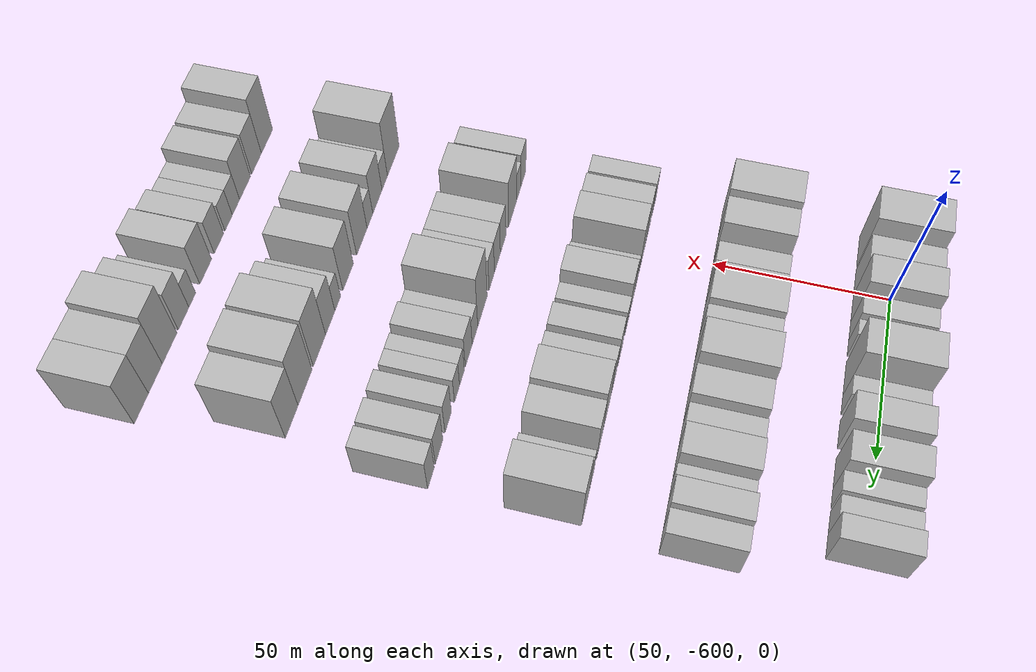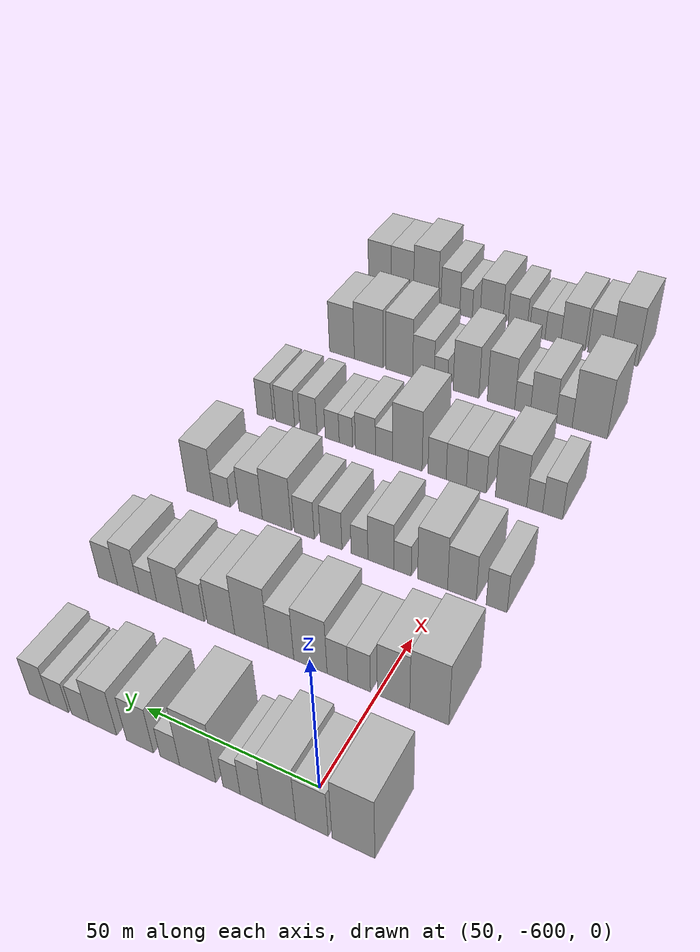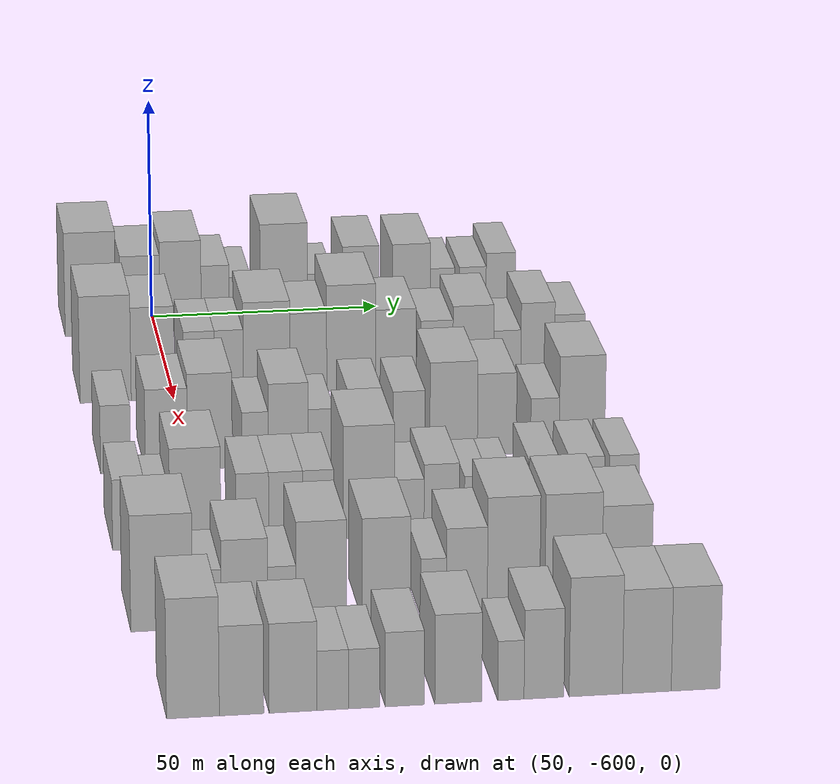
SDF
<sdf version="1.6">
 <world name="default">
  <model name="building_1">
   <static>1</static>
   <pose>50.0000 -614.4221 0 0.000000 0.000000 0.000000</pose>
   <link name="link">
    <pose>0 0 12.00 0 0 0</pose>
    <collision name="collision"><geometry><box><size>20.0000 11.1559 24.0000</size></box></geometry></collision>
    <visual name="visual">
     <cast_shadows>0</cast_shadows>
     <geometry><box><size>20.0000 11.1559 24.0000</size></box></geometry>
     <material>
      <script>
       <uri>model://HANNAS_wall/materials/scripts</uri>
       <uri>model://HANNAS_wall/materials/textures</uri>
       <name>vrc/HANNAS_wall</name>
      </script>
     </material>
    </visual>
   </link>
  </model>
  <model name="building_2">
   <static>1</static>
   <pose>50.0000 -603.4879 0 0.000000 0.000000 0.000000</pose>
   <link name="link">
    <pose>0 0 9.00 0 0 0</pose>
    <collision name="collision"><geometry><box><size>20.0000 8.7124 18.0000</size></box></geometry></collision>
    <visual name="visual">
     <cast_shadows>0</cast_shadows>
     <geometry><box><size>20.0000 8.7124 18.0000</size></box></geometry>
     <material>
      <script>
       <uri>model://HANNAS_wall/materials/scripts</uri>
       <uri>model://HANNAS_wall/materials/textures</uri>
       <name>vrc/HANNAS_wall</name>
      </script>
     </material>
    </visual>
   </link>
  </model>
  <model name="building_3">
   <static>1</static>
   <pose>50.0000 -594.5957 0 0.000000 0.000000 0.000000</pose>
   <link name="link">
    <pose>0 0 10.50 0 0 0</pose>
    <collision name="collision"><geometry><box><size>20.0000 9.0720 21.0000</size></box></geometry></collision>
    <visual name="visual">
     <cast_shadows>0</cast_shadows>
     <geometry><box><size>20.0000 9.0720 21.0000</size></box></geometry>
     <material>
      <script>
       <uri>model://HANNAS_wall/materials/scripts</uri>
       <uri>model://HANNAS_wall/materials/textures</uri>
       <name>vrc/HANNAS_wall</name>
      </script>
     </material>
    </visual>
   </link>
  </model>
  <model name="building_4">
   <static>1</static>
   <pose>50.0000 -586.9636 0 0.000000 0.000000 0.000000</pose>
   <link name="link">
    <pose>0 0 7.50 0 0 0</pose>
    <collision name="collision"><geometry><box><size>20.0000 6.1923 15.0000</size></box></geometry></collision>
    <visual name="visual">
     <cast_shadows>0</cast_shadows>
     <geometry><box><size>20.0000 6.1923 15.0000</size></box></geometry>
     <material>
      <script>
       <uri>model://HANNAS_wall/materials/scripts</uri>
       <uri>model://HANNAS_wall/materials/textures</uri>
       <name>vrc/HANNAS_wall</name>
      </script>
     </material>
    </visual>
   </link>
  </model>
  <model name="building_5">
   <static>1</static>
   <pose>50.0000 -581.4569 0 0.000000 0.000000 0.000000</pose>
   <link name="link">
    <pose>0 0 6.00 0 0 0</pose>
    <collision name="collision"><geometry><box><size>20.0000 4.8212 12.0000</size></box></geometry></collision>
    <visual name="visual">
     <cast_shadows>0</cast_shadows>
     <geometry><box><size>20.0000 4.8212 12.0000</size></box></geometry>
     <material>
      <script>
       <uri>model://HANNAS_wall/materials/scripts</uri>
       <uri>model://HANNAS_wall/materials/textures</uri>
       <name>vrc/HANNAS_wall</name>
      </script>
     </material>
    </visual>
   </link>
  </model>
  <model name="building_6">
   <static>1</static>
   <pose>50.0000 -571.8169 0 0.000000 0.000000 0.000000</pose>
   <link name="link">
    <pose>0 0 12.00 0 0 0</pose>
    <collision name="collision"><geometry><box><size>20.0000 10.4588 24.0000</size></box></geometry></collision>
    <visual name="visual">
     <cast_shadows>0</cast_shadows>
     <geometry><box><size>20.0000 10.4588 24.0000</size></box></geometry>
     <material>
      <script>
       <uri>model://HANNAS_wall/materials/scripts</uri>
       <uri>model://HANNAS_wall/materials/textures</uri>
       <name>vrc/HANNAS_wall</name>
      </script>
     </material>
    </visual>
   </link>
  </model>
  <model name="building_7">
   <static>1</static>
   <pose>50.0000 -563.7268 0 0.000000 0.000000 0.000000</pose>
   <link name="link">
    <pose>0 0 6.00 0 0 0</pose>
    <collision name="collision"><geometry><box><size>20.0000 5.7213 12.0000</size></box></geometry></collision>
    <visual name="visual">
     <cast_shadows>0</cast_shadows>
     <geometry><box><size>20.0000 5.7213 12.0000</size></box></geometry>
     <material>
      <script>
       <uri>model://HANNAS_wall/materials/scripts</uri>
       <uri>model://HANNAS_wall/materials/textures</uri>
       <name>vrc/HANNAS_wall</name>
      </script>
     </material>
    </visual>
   </link>
  </model>
  <model name="building_8">
   <static>1</static>
   <pose>50.0000 -554.8263 0 0.000000 0.000000 0.000000</pose>
   <link name="link">
    <pose>0 0 9.00 0 0 0</pose>
    <collision name="collision"><geometry><box><size>20.0000 8.0798 18.0000</size></box></geometry></collision>
    <visual name="visual">
     <cast_shadows>0</cast_shadows>
     <geometry><box><size>20.0000 8.0798 18.0000</size></box></geometry>
     <material>
      <script>
       <uri>model://HANNAS_wall/materials/scripts</uri>
       <uri>model://HANNAS_wall/materials/textures</uri>
       <name>vrc/HANNAS_wall</name>
      </script>
     </material>
    </visual>
   </link>
  </model>
  <model name="building_9">
   <static>1</static>
   <pose>50.0000 -543.5676 0 0.000000 0.000000 0.000000</pose>
   <link name="link">
    <pose>0 0 9.00 0 0 0</pose>
    <collision name="collision"><geometry><box><size>20.0000 8.4376 18.0000</size></box></geometry></collision>
    <visual name="visual">
     <cast_shadows>0</cast_shadows>
     <geometry><box><size>20.0000 8.4376 18.0000</size></box></geometry>
     <material>
      <script>
       <uri>model://HANNAS_wall/materials/scripts</uri>
       <uri>model://HANNAS_wall/materials/textures</uri>
       <name>vrc/HANNAS_wall</name>
      </script>
     </material>
    </visual>
   </link>
  </model>
  <model name="building_10">
   <static>1</static>
   <pose>50.0000 -536.6171 0 0.000000 0.000000 0.000000</pose>
   <link name="link">
    <pose>0 0 6.00 0 0 0</pose>
    <collision name="collision"><geometry><box><size>20.0000 5.4634 12.0000</size></box></geometry></collision>
    <visual name="visual">
     <cast_shadows>0</cast_shadows>
     <geometry><box><size>20.0000 5.4634 12.0000</size></box></geometry>
     <material>
      <script>
       <uri>model://HANNAS_wall/materials/scripts</uri>
       <uri>model://HANNAS_wall/materials/textures</uri>
       <name>vrc/HANNAS_wall</name>
      </script>
     </material>
    </visual>
   </link>
  </model>
  <model name="building_11">
   <static>1</static>
   <pose>50.0000 -529.8984 0 0.000000 0.000000 0.000000</pose>
   <link name="link">
    <pose>0 0 6.00 0 0 0</pose>
    <collision name="collision"><geometry><box><size>20.0000 5.9742 12.0000</size></box></geometry></collision>
    <visual name="visual">
     <cast_shadows>0</cast_shadows>
     <geometry><box><size>20.0000 5.9742 12.0000</size></box></geometry>
     <material>
      <script>
       <uri>model://HANNAS_wall/materials/scripts</uri>
       <uri>model://HANNAS_wall/materials/textures</uri>
       <name>vrc/HANNAS_wall</name>
      </script>
     </material>
    </visual>
   </link>
  </model>
  <model name="building_12">
   <static>1</static>
   <pose>50.0000 -523.6184 0 0.000000 0.000000 0.000000</pose>
   <link name="link">
    <pose>0 0 7.50 0 0 0</pose>
    <collision name="collision"><geometry><box><size>20.0000 6.5856 15.0000</size></box></geometry></collision>
    <visual name="visual">
     <cast_shadows>0</cast_shadows>
     <geometry><box><size>20.0000 6.5856 15.0000</size></box></geometry>
     <material>
      <script>
       <uri>model://HANNAS_wall/materials/scripts</uri>
       <uri>model://HANNAS_wall/materials/textures</uri>
       <name>vrc/HANNAS_wall</name>
      </script>
     </material>
    </visual>
   </link>
  </model>
  <model name="building_136">
   <static>1</static>
   <pose>90.0000 -614.5608 0 0.000000 0.000000 0.000000</pose>
   <link name="link">
    <pose>0 0 12.00 0 0 0</pose>
    <collision name="collision"><geometry><box><size>20.0000 10.8784 24.0000</size></box></geometry></collision>
    <visual name="visual">
     <cast_shadows>0</cast_shadows>
     <geometry><box><size>20.0000 10.8784 24.0000</size></box></geometry>
     <material>
      <script>
       <uri>model://HANNAS_wall/materials/scripts</uri>
       <uri>model://HANNAS_wall/materials/textures</uri>
       <name>vrc/HANNAS_wall</name>
      </script>
     </material>
    </visual>
   </link>
  </model>
  <model name="building_137">
   <static>1</static>
   <pose>90.0000 -604.5056 0 0.000000 0.000000 0.000000</pose>
   <link name="link">
    <pose>0 0 10.50 0 0 0</pose>
    <collision name="collision"><geometry><box><size>20.0000 9.2322 21.0000</size></box></geometry></collision>
    <visual name="visual">
     <cast_shadows>0</cast_shadows>
     <geometry><box><size>20.0000 9.2322 21.0000</size></box></geometry>
     <material>
      <script>
       <uri>model://HANNAS_wall/materials/scripts</uri>
       <uri>model://HANNAS_wall/materials/textures</uri>
       <name>vrc/HANNAS_wall</name>
      </script>
     </material>
    </visual>
   </link>
  </model>
  <model name="building_138">
   <static>1</static>
   <pose>90.0000 -594.6134 0 0.000000 0.000000 0.000000</pose>
   <link name="link">
    <pose>0 0 7.50 0 0 0</pose>
    <collision name="collision"><geometry><box><size>20.0000 6.5521 15.0000</size></box></geometry></collision>
    <visual name="visual">
     <cast_shadows>0</cast_shadows>
     <geometry><box><size>20.0000 6.5521 15.0000</size></box></geometry>
     <material>
      <script>
       <uri>model://HANNAS_wall/materials/scripts</uri>
       <uri>model://HANNAS_wall/materials/textures</uri>
       <name>vrc/HANNAS_wall</name>
      </script>
     </material>
    </visual>
   </link>
  </model>
  <model name="building_139">
   <static>1</static>
   <pose>90.0000 -588.2598 0 0.000000 0.000000 0.000000</pose>
   <link name="link">
    <pose>0 0 7.50 0 0 0</pose>
    <collision name="collision"><geometry><box><size>20.0000 6.1551 15.0000</size></box></geometry></collision>
    <visual name="visual">
     <cast_shadows>0</cast_shadows>
     <geometry><box><size>20.0000 6.1551 15.0000</size></box></geometry>
     <material>
      <script>
       <uri>model://HANNAS_wall/materials/scripts</uri>
       <uri>model://HANNAS_wall/materials/textures</uri>
       <name>vrc/HANNAS_wall</name>
      </script>
     </material>
    </visual>
   </link>
  </model>
  <model name="building_140">
   <static>1</static>
   <pose>90.0000 -580.1632 0 0.000000 0.000000 0.000000</pose>
   <link name="link">
    <pose>0 0 10.50 0 0 0</pose>
    <collision name="collision"><geometry><box><size>20.0000 10.0381 21.0000</size></box></geometry></collision>
    <visual name="visual">
     <cast_shadows>0</cast_shadows>
     <geometry><box><size>20.0000 10.0381 21.0000</size></box></geometry>
     <material>
      <script>
       <uri>model://HANNAS_wall/materials/scripts</uri>
       <uri>model://HANNAS_wall/materials/textures</uri>
       <name>vrc/HANNAS_wall</name>
      </script>
     </material>
    </visual>
   </link>
  </model>
  <model name="building_141">
   <static>1</static>
   <pose>90.0000 -571.2366 0 0.000000 0.000000 0.000000</pose>
   <link name="link">
    <pose>0 0 9.00 0 0 0</pose>
    <collision name="collision"><geometry><box><size>20.0000 7.8151 18.0000</size></box></geometry></collision>
    <visual name="visual">
     <cast_shadows>0</cast_shadows>
     <geometry><box><size>20.0000 7.8151 18.0000</size></box></geometry>
     <material>
      <script>
       <uri>model://HANNAS_wall/materials/scripts</uri>
       <uri>model://HANNAS_wall/materials/textures</uri>
       <name>vrc/HANNAS_wall</name>
      </script>
     </material>
    </visual>
   </link>
  </model>
  <model name="building_142">
   <static>1</static>
   <pose>90.0000 -562.1021 0 0.000000 0.000000 0.000000</pose>
   <link name="link">
    <pose>0 0 12.00 0 0 0</pose>
    <collision name="collision"><geometry><box><size>20.0000 10.4539 24.0000</size></box></geometry></collision>
    <visual name="visual">
     <cast_shadows>0</cast_shadows>
     <geometry><box><size>20.0000 10.4539 24.0000</size></box></geometry>
     <material>
      <script>
       <uri>model://HANNAS_wall/materials/scripts</uri>
       <uri>model://HANNAS_wall/materials/textures</uri>
       <name>vrc/HANNAS_wall</name>
      </script>
     </material>
    </visual>
   </link>
  </model>
  <model name="building_143">
   <static>1</static>
   <pose>90.0000 -552.4951 0 0.000000 0.000000 0.000000</pose>
   <link name="link">
    <pose>0 0 9.00 0 0 0</pose>
    <collision name="collision"><geometry><box><size>20.0000 8.7600 18.0000</size></box></geometry></collision>
    <visual name="visual">
     <cast_shadows>0</cast_shadows>
     <geometry><box><size>20.0000 8.7600 18.0000</size></box></geometry>
     <material>
      <script>
       <uri>model://HANNAS_wall/materials/scripts</uri>
       <uri>model://HANNAS_wall/materials/textures</uri>
       <name>vrc/HANNAS_wall</name>
      </script>
     </material>
    </visual>
   </link>
  </model>
  <model name="building_144">
   <static>1</static>
   <pose>90.0000 -543.6557 0 0.000000 0.000000 0.000000</pose>
   <link name="link">
    <pose>0 0 7.50 0 0 0</pose>
    <collision name="collision"><geometry><box><size>20.0000 6.9188 15.0000</size></box></geometry></collision>
    <visual name="visual">
     <cast_shadows>0</cast_shadows>
     <geometry><box><size>20.0000 6.9188 15.0000</size></box></geometry>
     <material>
      <script>
       <uri>model://HANNAS_wall/materials/scripts</uri>
       <uri>model://HANNAS_wall/materials/textures</uri>
       <name>vrc/HANNAS_wall</name>
      </script>
     </material>
    </visual>
   </link>
  </model>
  <model name="building_145">
   <static>1</static>
   <pose>90.0000 -535.8048 0 0.000000 0.000000 0.000000</pose>
   <link name="link">
    <pose>0 0 9.00 0 0 0</pose>
    <collision name="collision"><geometry><box><size>20.0000 8.7831 18.0000</size></box></geometry></collision>
    <visual name="visual">
     <cast_shadows>0</cast_shadows>
     <geometry><box><size>20.0000 8.7831 18.0000</size></box></geometry>
     <material>
      <script>
       <uri>model://HANNAS_wall/materials/scripts</uri>
       <uri>model://HANNAS_wall/materials/textures</uri>
       <name>vrc/HANNAS_wall</name>
      </script>
     </material>
    </visual>
   </link>
  </model>
  <model name="building_146">
   <static>1</static>
   <pose>90.0000 -528.4596 0 0.000000 0.000000 0.000000</pose>
   <link name="link">
    <pose>0 0 6.00 0 0 0</pose>
    <collision name="collision"><geometry><box><size>20.0000 5.9072 12.0000</size></box></geometry></collision>
    <visual name="visual">
     <cast_shadows>0</cast_shadows>
     <geometry><box><size>20.0000 5.9072 12.0000</size></box></geometry>
     <material>
      <script>
       <uri>model://HANNAS_wall/materials/scripts</uri>
       <uri>model://HANNAS_wall/materials/textures</uri>
       <name>vrc/HANNAS_wall</name>
      </script>
     </material>
    </visual>
   </link>
  </model>
  <model name="building_147">
   <static>1</static>
   <pose>90.0000 -521.8596 0 0.000000 0.000000 0.000000</pose>
   <link name="link">
    <pose>0 0 9.00 0 0 0</pose>
    <collision name="collision"><geometry><box><size>20.0000 7.2928 18.0000</size></box></geometry></collision>
    <visual name="visual">
     <cast_shadows>0</cast_shadows>
     <geometry><box><size>20.0000 7.2928 18.0000</size></box></geometry>
     <material>
      <script>
       <uri>model://HANNAS_wall/materials/scripts</uri>
       <uri>model://HANNAS_wall/materials/textures</uri>
       <name>vrc/HANNAS_wall</name>
      </script>
     </material>
    </visual>
   </link>
  </model>
  <model name="building_148">
   <static>1</static>
   <pose>90.0000 -514.9527 0 0.000000 0.000000 0.000000</pose>
   <link name="link">
    <pose>0 0 7.50 0 0 0</pose>
    <collision name="collision"><geometry><box><size>20.0000 6.5209 15.0000</size></box></geometry></collision>
    <visual name="visual">
     <cast_shadows>0</cast_shadows>
     <geometry><box><size>20.0000 6.5209 15.0000</size></box></geometry>
     <material>
      <script>
       <uri>model://HANNAS_wall/materials/scripts</uri>
       <uri>model://HANNAS_wall/materials/textures</uri>
       <name>vrc/HANNAS_wall</name>
      </script>
     </material>
    </visual>
   </link>
  </model>
  <model name="building_277">
   <static>1</static>
   <pose>130.0000 -615.8976 0 0.000000 0.000000 0.000000</pose>
   <link name="link">
    <pose>0 0 7.50 0 0 0</pose>
    <collision name="collision"><geometry><box><size>20.0000 6.2048 15.0000</size></box></geometry></collision>
    <visual name="visual">
     <cast_shadows>0</cast_shadows>
     <geometry><box><size>20.0000 6.2048 15.0000</size></box></geometry>
     <material>
      <script>
       <uri>model://HANNAS_wall/materials/scripts</uri>
       <uri>model://HANNAS_wall/materials/textures</uri>
       <name>vrc/HANNAS_wall</name>
      </script>
     </material>
    </visual>
   </link>
  </model>
  <model name="building_278">
   <static>1</static>
   <pose>130.0000 -605.4466 0 0.000000 0.000000 0.000000</pose>
   <link name="link">
    <pose>0 0 9.00 0 0 0</pose>
    <collision name="collision"><geometry><box><size>20.0000 8.6971 18.0000</size></box></geometry></collision>
    <visual name="visual">
     <cast_shadows>0</cast_shadows>
     <geometry><box><size>20.0000 8.6971 18.0000</size></box></geometry>
     <material>
      <script>
       <uri>model://HANNAS_wall/materials/scripts</uri>
       <uri>model://HANNAS_wall/materials/textures</uri>
       <name>vrc/HANNAS_wall</name>
      </script>
     </material>
    </visual>
   </link>
  </model>
  <model name="building_279">
   <static>1</static>
   <pose>130.0000 -596.4821 0 0.000000 0.000000 0.000000</pose>
   <link name="link">
    <pose>0 0 10.50 0 0 0</pose>
    <collision name="collision"><geometry><box><size>20.0000 9.2318 21.0000</size></box></geometry></collision>
    <visual name="visual">
     <cast_shadows>0</cast_shadows>
     <geometry><box><size>20.0000 9.2318 21.0000</size></box></geometry>
     <material>
      <script>
       <uri>model://HANNAS_wall/materials/scripts</uri>
       <uri>model://HANNAS_wall/materials/textures</uri>
       <name>vrc/HANNAS_wall</name>
      </script>
     </material>
    </visual>
   </link>
  </model>
  <model name="building_280">
   <static>1</static>
   <pose>130.0000 -587.1384 0 0.000000 0.000000 0.000000</pose>
   <link name="link">
    <pose>0 0 6.00 0 0 0</pose>
    <collision name="collision"><geometry><box><size>20.0000 5.4557 12.0000</size></box></geometry></collision>
    <visual name="visual">
     <cast_shadows>0</cast_shadows>
     <geometry><box><size>20.0000 5.4557 12.0000</size></box></geometry>
     <material>
      <script>
       <uri>model://HANNAS_wall/materials/scripts</uri>
       <uri>model://HANNAS_wall/materials/textures</uri>
       <name>vrc/HANNAS_wall</name>
      </script>
     </material>
    </visual>
   </link>
  </model>
  <model name="building_281">
   <static>1</static>
   <pose>130.0000 -580.2748 0 0.000000 0.000000 0.000000</pose>
   <link name="link">
    <pose>0 0 9.00 0 0 0</pose>
    <collision name="collision"><geometry><box><size>20.0000 8.2716 18.0000</size></box></geometry></collision>
    <visual name="visual">
     <cast_shadows>0</cast_shadows>
     <geometry><box><size>20.0000 8.2716 18.0000</size></box></geometry>
     <material>
      <script>
       <uri>model://HANNAS_wall/materials/scripts</uri>
       <uri>model://HANNAS_wall/materials/textures</uri>
       <name>vrc/HANNAS_wall</name>
      </script>
     </material>
    </visual>
   </link>
  </model>
  <model name="building_282">
   <static>1</static>
   <pose>130.0000 -573.4249 0 0.000000 0.000000 0.000000</pose>
   <link name="link">
    <pose>0 0 6.00 0 0 0</pose>
    <collision name="collision"><geometry><box><size>20.0000 5.4283 12.0000</size></box></geometry></collision>
    <visual name="visual">
     <cast_shadows>0</cast_shadows>
     <geometry><box><size>20.0000 5.4283 12.0000</size></box></geometry>
     <material>
      <script>
       <uri>model://HANNAS_wall/materials/scripts</uri>
       <uri>model://HANNAS_wall/materials/textures</uri>
       <name>vrc/HANNAS_wall</name>
      </script>
     </material>
    </visual>
   </link>
  </model>
  <model name="building_283">
   <static>1</static>
   <pose>130.0000 -564.1349 0 0.000000 0.000000 0.000000</pose>
   <link name="link">
    <pose>0 0 7.50 0 0 0</pose>
    <collision name="collision"><geometry><box><size>20.0000 7.1517 15.0000</size></box></geometry></collision>
    <visual name="visual">
     <cast_shadows>0</cast_shadows>
     <geometry><box><size>20.0000 7.1517 15.0000</size></box></geometry>
     <material>
      <script>
       <uri>model://HANNAS_wall/materials/scripts</uri>
       <uri>model://HANNAS_wall/materials/textures</uri>
       <name>vrc/HANNAS_wall</name>
      </script>
     </material>
    </visual>
   </link>
  </model>
  <model name="building_284">
   <static>1</static>
   <pose>130.0000 -555.2096 0 0.000000 0.000000 0.000000</pose>
   <link name="link">
    <pose>0 0 7.50 0 0 0</pose>
    <collision name="collision"><geometry><box><size>20.0000 6.6989 15.0000</size></box></geometry></collision>
    <visual name="visual">
     <cast_shadows>0</cast_shadows>
     <geometry><box><size>20.0000 6.6989 15.0000</size></box></geometry>
     <material>
      <script>
       <uri>model://HANNAS_wall/materials/scripts</uri>
       <uri>model://HANNAS_wall/materials/textures</uri>
       <name>vrc/HANNAS_wall</name>
      </script>
     </material>
    </visual>
   </link>
  </model>
  <model name="building_285">
   <static>1</static>
   <pose>130.0000 -545.9020 0 0.000000 0.000000 0.000000</pose>
   <link name="link">
    <pose>0 0 10.50 0 0 0</pose>
    <collision name="collision"><geometry><box><size>20.0000 9.9163 21.0000</size></box></geometry></collision>
    <visual name="visual">
     <cast_shadows>0</cast_shadows>
     <geometry><box><size>20.0000 9.9163 21.0000</size></box></geometry>
     <material>
      <script>
       <uri>model://HANNAS_wall/materials/scripts</uri>
       <uri>model://HANNAS_wall/materials/textures</uri>
       <name>vrc/HANNAS_wall</name>
      </script>
     </material>
    </visual>
   </link>
  </model>
  <model name="building_286">
   <static>1</static>
   <pose>130.0000 -536.8794 0 0.000000 0.000000 0.000000</pose>
   <link name="link">
    <pose>0 0 9.00 0 0 0</pose>
    <collision name="collision"><geometry><box><size>20.0000 8.1289 18.0000</size></box></geometry></collision>
    <visual name="visual">
     <cast_shadows>0</cast_shadows>
     <geometry><box><size>20.0000 8.1289 18.0000</size></box></geometry>
     <material>
      <script>
       <uri>model://HANNAS_wall/materials/scripts</uri>
       <uri>model://HANNAS_wall/materials/textures</uri>
       <name>vrc/HANNAS_wall</name>
      </script>
     </material>
    </visual>
   </link>
  </model>
  <model name="building_287">
   <static>1</static>
   <pose>130.0000 -526.8162 0 0.000000 0.000000 0.000000</pose>
   <link name="link">
    <pose>0 0 6.00 0 0 0</pose>
    <collision name="collision"><geometry><box><size>20.0000 5.9977 12.0000</size></box></geometry></collision>
    <visual name="visual">
     <cast_shadows>0</cast_shadows>
     <geometry><box><size>20.0000 5.9977 12.0000</size></box></geometry>
     <material>
      <script>
       <uri>model://HANNAS_wall/materials/scripts</uri>
       <uri>model://HANNAS_wall/materials/textures</uri>
       <name>vrc/HANNAS_wall</name>
      </script>
     </material>
    </visual>
   </link>
  </model>
  <model name="building_288">
   <static>1</static>
   <pose>130.0000 -519.0332 0 0.000000 0.000000 0.000000</pose>
   <link name="link">
    <pose>0 0 10.50 0 0 0</pose>
    <collision name="collision"><geometry><box><size>20.0000 9.5683 21.0000</size></box></geometry></collision>
    <visual name="visual">
     <cast_shadows>0</cast_shadows>
     <geometry><box><size>20.0000 9.5683 21.0000</size></box></geometry>
     <material>
      <script>
       <uri>model://HANNAS_wall/materials/scripts</uri>
       <uri>model://HANNAS_wall/materials/textures</uri>
       <name>vrc/HANNAS_wall</name>
      </script>
     </material>
    </visual>
   </link>
  </model>
  <model name="building_416">
   <static>1</static>
   <pose>170.0000 -616.8271 0 0.000000 0.000000 0.000000</pose>
   <link name="link">
    <pose>0 0 7.50 0 0 0</pose>
    <collision name="collision"><geometry><box><size>20.0000 6.3458 15.0000</size></box></geometry></collision>
    <visual name="visual">
     <cast_shadows>0</cast_shadows>
     <geometry><box><size>20.0000 6.3458 15.0000</size></box></geometry>
     <material>
      <script>
       <uri>model://HANNAS_wall/materials/scripts</uri>
       <uri>model://HANNAS_wall/materials/textures</uri>
       <name>vrc/HANNAS_wall</name>
      </script>
     </material>
    </visual>
   </link>
  </model>
  <model name="building_417">
   <static>1</static>
   <pose>170.0000 -611.1258 0 0.000000 0.000000 0.000000</pose>
   <link name="link">
    <pose>0 0 6.00 0 0 0</pose>
    <collision name="collision"><geometry><box><size>20.0000 5.0568 12.0000</size></box></geometry></collision>
    <visual name="visual">
     <cast_shadows>0</cast_shadows>
     <geometry><box><size>20.0000 5.0568 12.0000</size></box></geometry>
     <material>
      <script>
       <uri>model://HANNAS_wall/materials/scripts</uri>
       <uri>model://HANNAS_wall/materials/textures</uri>
       <name>vrc/HANNAS_wall</name>
      </script>
     </material>
    </visual>
   </link>
  </model>
  <model name="building_418">
   <static>1</static>
   <pose>170.0000 -603.5191 0 0.000000 0.000000 0.000000</pose>
   <link name="link">
    <pose>0 0 10.50 0 0 0</pose>
    <collision name="collision"><geometry><box><size>20.0000 10.1565 21.0000</size></box></geometry></collision>
    <visual name="visual">
     <cast_shadows>0</cast_shadows>
     <geometry><box><size>20.0000 10.1565 21.0000</size></box></geometry>
     <material>
      <script>
       <uri>model://HANNAS_wall/materials/scripts</uri>
       <uri>model://HANNAS_wall/materials/textures</uri>
       <name>vrc/HANNAS_wall</name>
      </script>
     </material>
    </visual>
   </link>
  </model>
  <model name="building_419">
   <static>1</static>
   <pose>170.0000 -592.1621 0 0.000000 0.000000 0.000000</pose>
   <link name="link">
    <pose>0 0 7.50 0 0 0</pose>
    <collision name="collision"><geometry><box><size>20.0000 6.5575 15.0000</size></box></geometry></collision>
    <visual name="visual">
     <cast_shadows>0</cast_shadows>
     <geometry><box><size>20.0000 6.5575 15.0000</size></box></geometry>
     <material>
      <script>
       <uri>model://HANNAS_wall/materials/scripts</uri>
       <uri>model://HANNAS_wall/materials/textures</uri>
       <name>vrc/HANNAS_wall</name>
      </script>
     </material>
    </visual>
   </link>
  </model>
  <model name="building_420">
   <static>1</static>
   <pose>170.0000 -585.4894 0 0.000000 0.000000 0.000000</pose>
   <link name="link">
    <pose>0 0 7.50 0 0 0</pose>
    <collision name="collision"><geometry><box><size>20.0000 6.7880 15.0000</size></box></geometry></collision>
    <visual name="visual">
     <cast_shadows>0</cast_shadows>
     <geometry><box><size>20.0000 6.7880 15.0000</size></box></geometry>
     <material>
      <script>
       <uri>model://HANNAS_wall/materials/scripts</uri>
       <uri>model://HANNAS_wall/materials/textures</uri>
       <name>vrc/HANNAS_wall</name>
      </script>
     </material>
    </visual>
   </link>
  </model>
  <model name="building_421">
   <static>1</static>
   <pose>170.0000 -579.0139 0 0.000000 0.000000 0.000000</pose>
   <link name="link">
    <pose>0 0 7.50 0 0 0</pose>
    <collision name="collision"><geometry><box><size>20.0000 6.1629 15.0000</size></box></geometry></collision>
    <visual name="visual">
     <cast_shadows>0</cast_shadows>
     <geometry><box><size>20.0000 6.1629 15.0000</size></box></geometry>
     <material>
      <script>
       <uri>model://HANNAS_wall/materials/scripts</uri>
       <uri>model://HANNAS_wall/materials/textures</uri>
       <name>vrc/HANNAS_wall</name>
      </script>
     </material>
    </visual>
   </link>
  </model>
  <model name="building_422">
   <static>1</static>
   <pose>170.0000 -568.8088 0 0.000000 0.000000 0.000000</pose>
   <link name="link">
    <pose>0 0 12.00 0 0 0</pose>
    <collision name="collision"><geometry><box><size>20.0000 10.2472 24.0000</size></box></geometry></collision>
    <visual name="visual">
     <cast_shadows>0</cast_shadows>
     <geometry><box><size>20.0000 10.2472 24.0000</size></box></geometry>
     <material>
      <script>
       <uri>model://HANNAS_wall/materials/scripts</uri>
       <uri>model://HANNAS_wall/materials/textures</uri>
       <name>vrc/HANNAS_wall</name>
      </script>
     </material>
    </visual>
   </link>
  </model>
  <model name="building_423">
   <static>1</static>
   <pose>170.0000 -560.7270 0 0.000000 0.000000 0.000000</pose>
   <link name="link">
    <pose>0 0 6.00 0 0 0</pose>
    <collision name="collision"><geometry><box><size>20.0000 5.9164 12.0000</size></box></geometry></collision>
    <visual name="visual">
     <cast_shadows>0</cast_shadows>
     <geometry><box><size>20.0000 5.9164 12.0000</size></box></geometry>
     <material>
      <script>
       <uri>model://HANNAS_wall/materials/scripts</uri>
       <uri>model://HANNAS_wall/materials/textures</uri>
       <name>vrc/HANNAS_wall</name>
      </script>
     </material>
    </visual>
   </link>
  </model>
  <model name="building_424">
   <static>1</static>
   <pose>170.0000 -554.2044 0 0.000000 0.000000 0.000000</pose>
   <link name="link">
    <pose>0 0 7.50 0 0 0</pose>
    <collision name="collision"><geometry><box><size>20.0000 7.1289 15.0000</size></box></geometry></collision>
    <visual name="visual">
     <cast_shadows>0</cast_shadows>
     <geometry><box><size>20.0000 7.1289 15.0000</size></box></geometry>
     <material>
      <script>
       <uri>model://HANNAS_wall/materials/scripts</uri>
       <uri>model://HANNAS_wall/materials/textures</uri>
       <name>vrc/HANNAS_wall</name>
      </script>
     </material>
    </visual>
   </link>
  </model>
  <model name="building_425">
   <static>1</static>
   <pose>170.0000 -547.2338 0 0.000000 0.000000 0.000000</pose>
   <link name="link">
    <pose>0 0 6.00 0 0 0</pose>
    <collision name="collision"><geometry><box><size>20.0000 4.8123 12.0000</size></box></geometry></collision>
    <visual name="visual">
     <cast_shadows>0</cast_shadows>
     <geometry><box><size>20.0000 4.8123 12.0000</size></box></geometry>
     <material>
      <script>
       <uri>model://HANNAS_wall/materials/scripts</uri>
       <uri>model://HANNAS_wall/materials/textures</uri>
       <name>vrc/HANNAS_wall</name>
      </script>
     </material>
    </visual>
   </link>
  </model>
  <model name="building_426">
   <static>1</static>
   <pose>170.0000 -542.2905 0 0.000000 0.000000 0.000000</pose>
   <link name="link">
    <pose>0 0 6.00 0 0 0</pose>
    <collision name="collision"><geometry><box><size>20.0000 5.0743 12.0000</size></box></geometry></collision>
    <visual name="visual">
     <cast_shadows>0</cast_shadows>
     <geometry><box><size>20.0000 5.0743 12.0000</size></box></geometry>
     <material>
      <script>
       <uri>model://HANNAS_wall/materials/scripts</uri>
       <uri>model://HANNAS_wall/materials/textures</uri>
       <name>vrc/HANNAS_wall</name>
      </script>
     </material>
    </visual>
   </link>
  </model>
  <model name="building_427">
   <static>1</static>
   <pose>170.0000 -533.6336 0 0.000000 0.000000 0.000000</pose>
   <link name="link">
    <pose>0 0 7.50 0 0 0</pose>
    <collision name="collision"><geometry><box><size>20.0000 6.2394 15.0000</size></box></geometry></collision>
    <visual name="visual">
     <cast_shadows>0</cast_shadows>
     <geometry><box><size>20.0000 6.2394 15.0000</size></box></geometry>
     <material>
      <script>
       <uri>model://HANNAS_wall/materials/scripts</uri>
       <uri>model://HANNAS_wall/materials/textures</uri>
       <name>vrc/HANNAS_wall</name>
      </script>
     </material>
    </visual>
   </link>
  </model>
  <model name="building_428">
   <static>1</static>
   <pose>170.0000 -524.9667 0 0.000000 0.000000 0.000000</pose>
   <link name="link">
    <pose>0 0 7.50 0 0 0</pose>
    <collision name="collision"><geometry><box><size>20.0000 7.0943 15.0000</size></box></geometry></collision>
    <visual name="visual">
     <cast_shadows>0</cast_shadows>
     <geometry><box><size>20.0000 7.0943 15.0000</size></box></geometry>
     <material>
      <script>
       <uri>model://HANNAS_wall/materials/scripts</uri>
       <uri>model://HANNAS_wall/materials/textures</uri>
       <name>vrc/HANNAS_wall</name>
      </script>
     </material>
    </visual>
   </link>
  </model>
  <model name="building_429">
   <static>1</static>
   <pose>170.0000 -517.4108 0 0.000000 0.000000 0.000000</pose>
   <link name="link">
    <pose>0 0 7.50 0 0 0</pose>
    <collision name="collision"><geometry><box><size>20.0000 6.0175 15.0000</size></box></geometry></collision>
    <visual name="visual">
     <cast_shadows>0</cast_shadows>
     <geometry><box><size>20.0000 6.0175 15.0000</size></box></geometry>
     <material>
      <script>
       <uri>model://HANNAS_wall/materials/scripts</uri>
       <uri>model://HANNAS_wall/materials/textures</uri>
       <name>vrc/HANNAS_wall</name>
      </script>
     </material>
    </visual>
   </link>
  </model>
  <model name="building_551">
   <static>1</static>
   <pose>210.0000 -614.0545 0 0.000000 0.000000 0.000000</pose>
   <link name="link">
    <pose>0 0 12.00 0 0 0</pose>
    <collision name="collision"><geometry><box><size>20.0000 11.8909 24.0000</size></box></geometry></collision>
    <visual name="visual">
     <cast_shadows>0</cast_shadows>
     <geometry><box><size>20.0000 11.8909 24.0000</size></box></geometry>
     <material>
      <script>
       <uri>model://HANNAS_wall/materials/scripts</uri>
       <uri>model://HANNAS_wall/materials/textures</uri>
       <name>vrc/HANNAS_wall</name>
      </script>
     </material>
    </visual>
   </link>
  </model>
  <model name="building_552">
   <static>1</static>
   <pose>210.0000 -605.3529 0 0.000000 0.000000 0.000000</pose>
   <link name="link">
    <pose>0 0 6.00 0 0 0</pose>
    <collision name="collision"><geometry><box><size>20.0000 5.5123 12.0000</size></box></geometry></collision>
    <visual name="visual">
     <cast_shadows>0</cast_shadows>
     <geometry><box><size>20.0000 5.5123 12.0000</size></box></geometry>
     <material>
      <script>
       <uri>model://HANNAS_wall/materials/scripts</uri>
       <uri>model://HANNAS_wall/materials/textures</uri>
       <name>vrc/HANNAS_wall</name>
      </script>
     </material>
    </visual>
   </link>
  </model>
  <model name="building_553">
   <static>1</static>
   <pose>210.0000 -598.1265 0 0.000000 0.000000 0.000000</pose>
   <link name="link">
    <pose>0 0 9.00 0 0 0</pose>
    <collision name="collision"><geometry><box><size>20.0000 8.9406 18.0000</size></box></geometry></collision>
    <visual name="visual">
     <cast_shadows>0</cast_shadows>
     <geometry><box><size>20.0000 8.9406 18.0000</size></box></geometry>
     <material>
      <script>
       <uri>model://HANNAS_wall/materials/scripts</uri>
       <uri>model://HANNAS_wall/materials/textures</uri>
       <name>vrc/HANNAS_wall</name>
      </script>
     </material>
    </visual>
   </link>
  </model>
  <model name="building_554">
   <static>1</static>
   <pose>210.0000 -590.9261 0 0.000000 0.000000 0.000000</pose>
   <link name="link">
    <pose>0 0 6.00 0 0 0</pose>
    <collision name="collision"><geometry><box><size>20.0000 5.4602 12.0000</size></box></geometry></collision>
    <visual name="visual">
     <cast_shadows>0</cast_shadows>
     <geometry><box><size>20.0000 5.4602 12.0000</size></box></geometry>
     <material>
      <script>
       <uri>model://HANNAS_wall/materials/scripts</uri>
       <uri>model://HANNAS_wall/materials/textures</uri>
       <name>vrc/HANNAS_wall</name>
      </script>
     </material>
    </visual>
   </link>
  </model>
  <model name="building_555">
   <static>1</static>
   <pose>210.0000 -583.3238 0 0.000000 0.000000 0.000000</pose>
   <link name="link">
    <pose>0 0 10.50 0 0 0</pose>
    <collision name="collision"><geometry><box><size>20.0000 9.7444 21.0000</size></box></geometry></collision>
    <visual name="visual">
     <cast_shadows>0</cast_shadows>
     <geometry><box><size>20.0000 9.7444 21.0000</size></box></geometry>
     <material>
      <script>
       <uri>model://HANNAS_wall/materials/scripts</uri>
       <uri>model://HANNAS_wall/materials/textures</uri>
       <name>vrc/HANNAS_wall</name>
      </script>
     </material>
    </visual>
   </link>
  </model>
  <model name="building_556">
   <static>1</static>
   <pose>210.0000 -570.7556 0 0.000000 0.000000 0.000000</pose>
   <link name="link">
    <pose>0 0 10.50 0 0 0</pose>
    <collision name="collision"><geometry><box><size>20.0000 9.3921 21.0000</size></box></geometry></collision>
    <visual name="visual">
     <cast_shadows>0</cast_shadows>
     <geometry><box><size>20.0000 9.3921 21.0000</size></box></geometry>
     <material>
      <script>
       <uri>model://HANNAS_wall/materials/scripts</uri>
       <uri>model://HANNAS_wall/materials/textures</uri>
       <name>vrc/HANNAS_wall</name>
      </script>
     </material>
    </visual>
   </link>
  </model>
  <model name="building_557">
   <static>1</static>
   <pose>210.0000 -561.5722 0 0.000000 0.000000 0.000000</pose>
   <link name="link">
    <pose>0 0 6.00 0 0 0</pose>
    <collision name="collision"><geometry><box><size>20.0000 4.9746 12.0000</size></box></geometry></collision>
    <visual name="visual">
     <cast_shadows>0</cast_shadows>
     <geometry><box><size>20.0000 4.9746 12.0000</size></box></geometry>
     <material>
      <script>
       <uri>model://HANNAS_wall/materials/scripts</uri>
       <uri>model://HANNAS_wall/materials/textures</uri>
       <name>vrc/HANNAS_wall</name>
      </script>
     </material>
    </visual>
   </link>
  </model>
  <model name="building_558">
   <static>1</static>
   <pose>210.0000 -555.1155 0 0.000000 0.000000 0.000000</pose>
   <link name="link">
    <pose>0 0 9.00 0 0 0</pose>
    <collision name="collision"><geometry><box><size>20.0000 7.9389 18.0000</size></box></geometry></collision>
    <visual name="visual">
     <cast_shadows>0</cast_shadows>
     <geometry><box><size>20.0000 7.9389 18.0000</size></box></geometry>
     <material>
      <script>
       <uri>model://HANNAS_wall/materials/scripts</uri>
       <uri>model://HANNAS_wall/materials/textures</uri>
       <name>vrc/HANNAS_wall</name>
      </script>
     </material>
    </visual>
   </link>
  </model>
  <model name="building_559">
   <static>1</static>
   <pose>210.0000 -546.0373 0 0.000000 0.000000 0.000000</pose>
   <link name="link">
    <pose>0 0 12.00 0 0 0</pose>
    <collision name="collision"><geometry><box><size>20.0000 10.2173 24.0000</size></box></geometry></collision>
    <visual name="visual">
     <cast_shadows>0</cast_shadows>
     <geometry><box><size>20.0000 10.2173 24.0000</size></box></geometry>
     <material>
      <script>
       <uri>model://HANNAS_wall/materials/scripts</uri>
       <uri>model://HANNAS_wall/materials/textures</uri>
       <name>vrc/HANNAS_wall</name>
      </script>
     </material>
    </visual>
   </link>
  </model>
  <model name="building_560">
   <static>1</static>
   <pose>210.0000 -534.3566 0 0.000000 0.000000 0.000000</pose>
   <link name="link">
    <pose>0 0 12.00 0 0 0</pose>
    <collision name="collision"><geometry><box><size>20.0000 11.1441 24.0000</size></box></geometry></collision>
    <visual name="visual">
     <cast_shadows>0</cast_shadows>
     <geometry><box><size>20.0000 11.1441 24.0000</size></box></geometry>
     <material>
      <script>
       <uri>model://HANNAS_wall/materials/scripts</uri>
       <uri>model://HANNAS_wall/materials/textures</uri>
       <name>vrc/HANNAS_wall</name>
      </script>
     </material>
    </visual>
   </link>
  </model>
  <model name="building_561">
   <static>1</static>
   <pose>210.0000 -523.9139 0 0.000000 0.000000 0.000000</pose>
   <link name="link">
    <pose>0 0 10.50 0 0 0</pose>
    <collision name="collision"><geometry><box><size>20.0000 9.7413 21.0000</size></box></geometry></collision>
    <visual name="visual">
     <cast_shadows>0</cast_shadows>
     <geometry><box><size>20.0000 9.7413 21.0000</size></box></geometry>
     <material>
      <script>
       <uri>model://HANNAS_wall/materials/scripts</uri>
       <uri>model://HANNAS_wall/materials/textures</uri>
       <name>vrc/HANNAS_wall</name>
      </script>
     </material>
    </visual>
   </link>
  </model>
  <model name="building_676">
   <static>1</static>
   <pose>250.0000 -612.1194 0 0.000000 0.000000 0.000000</pose>
   <link name="link">
    <pose>0 0 12.00 0 0 0</pose>
    <collision name="collision"><geometry><box><size>20.0000 9.7612 24.0000</size></box></geometry></collision>
    <visual name="visual">
     <cast_shadows>0</cast_shadows>
     <geometry><box><size>20.0000 9.7612 24.0000</size></box></geometry>
     <material>
      <script>
       <uri>model://HANNAS_wall/materials/scripts</uri>
       <uri>model://HANNAS_wall/materials/textures</uri>
       <name>vrc/HANNAS_wall</name>
      </script>
     </material>
    </visual>
   </link>
  </model>
  <model name="building_677">
   <static>1</static>
   <pose>250.0000 -603.1116 0 0.000000 0.000000 0.000000</pose>
   <link name="link">
    <pose>0 0 9.00 0 0 0</pose>
    <collision name="collision"><geometry><box><size>20.0000 8.2544 18.0000</size></box></geometry></collision>
    <visual name="visual">
     <cast_shadows>0</cast_shadows>
     <geometry><box><size>20.0000 8.2544 18.0000</size></box></geometry>
     <material>
      <script>
       <uri>model://HANNAS_wall/materials/scripts</uri>
       <uri>model://HANNAS_wall/materials/textures</uri>
       <name>vrc/HANNAS_wall</name>
      </script>
     </material>
    </visual>
   </link>
  </model>
  <model name="building_678">
   <static>1</static>
   <pose>250.0000 -593.5319 0 0.000000 0.000000 0.000000</pose>
   <link name="link">
    <pose>0 0 9.00 0 0 0</pose>
    <collision name="collision"><geometry><box><size>20.0000 8.9049 18.0000</size></box></geometry></collision>
    <visual name="visual">
     <cast_shadows>0</cast_shadows>
     <geometry><box><size>20.0000 8.9049 18.0000</size></box></geometry>
     <material>
      <script>
       <uri>model://HANNAS_wall/materials/scripts</uri>
       <uri>model://HANNAS_wall/materials/textures</uri>
       <name>vrc/HANNAS_wall</name>
      </script>
     </material>
    </visual>
   </link>
  </model>
  <model name="building_679">
   <static>1</static>
   <pose>250.0000 -586.1449 0 0.000000 0.000000 0.000000</pose>
   <link name="link">
    <pose>0 0 6.00 0 0 0</pose>
    <collision name="collision"><geometry><box><size>20.0000 5.8691 12.0000</size></box></geometry></collision>
    <visual name="visual">
     <cast_shadows>0</cast_shadows>
     <geometry><box><size>20.0000 5.8691 12.0000</size></box></geometry>
     <material>
      <script>
       <uri>model://HANNAS_wall/materials/scripts</uri>
       <uri>model://HANNAS_wall/materials/textures</uri>
       <name>vrc/HANNAS_wall</name>
      </script>
     </material>
    </visual>
   </link>
  </model>
  <model name="building_680">
   <static>1</static>
   <pose>250.0000 -580.2800 0 0.000000 0.000000 0.000000</pose>
   <link name="link">
    <pose>0 0 6.00 0 0 0</pose>
    <collision name="collision"><geometry><box><size>20.0000 5.8608 12.0000</size></box></geometry></collision>
    <visual name="visual">
     <cast_shadows>0</cast_shadows>
     <geometry><box><size>20.0000 5.8608 12.0000</size></box></geometry>
     <material>
      <script>
       <uri>model://HANNAS_wall/materials/scripts</uri>
       <uri>model://HANNAS_wall/materials/textures</uri>
       <name>vrc/HANNAS_wall</name>
      </script>
     </material>
    </visual>
   </link>
  </model>
  <model name="building_681">
   <static>1</static>
   <pose>250.0000 -572.7197 0 0.000000 0.000000 0.000000</pose>
   <link name="link">
    <pose>0 0 7.50 0 0 0</pose>
    <collision name="collision"><geometry><box><size>20.0000 7.2598 15.0000</size></box></geometry></collision>
    <visual name="visual">
     <cast_shadows>0</cast_shadows>
     <geometry><box><size>20.0000 7.2598 15.0000</size></box></geometry>
     <material>
      <script>
       <uri>model://HANNAS_wall/materials/scripts</uri>
       <uri>model://HANNAS_wall/materials/textures</uri>
       <name>vrc/HANNAS_wall</name>
      </script>
     </material>
    </visual>
   </link>
  </model>
  <model name="building_682">
   <static>1</static>
   <pose>250.0000 -562.6914 0 0.000000 0.000000 0.000000</pose>
   <link name="link">
    <pose>0 0 9.00 0 0 0</pose>
    <collision name="collision"><geometry><box><size>20.0000 8.7968 18.0000</size></box></geometry></collision>
    <visual name="visual">
     <cast_shadows>0</cast_shadows>
     <geometry><box><size>20.0000 8.7968 18.0000</size></box></geometry>
     <material>
      <script>
       <uri>model://HANNAS_wall/materials/scripts</uri>
       <uri>model://HANNAS_wall/materials/textures</uri>
       <name>vrc/HANNAS_wall</name>
      </script>
     </material>
    </visual>
   </link>
  </model>
  <model name="building_683">
   <static>1</static>
   <pose>250.0000 -552.8302 0 0.000000 0.000000 0.000000</pose>
   <link name="link">
    <pose>0 0 6.00 0 0 0</pose>
    <collision name="collision"><geometry><box><size>20.0000 4.9256 12.0000</size></box></geometry></collision>
    <visual name="visual">
     <cast_shadows>0</cast_shadows>
     <geometry><box><size>20.0000 4.9256 12.0000</size></box></geometry>
     <material>
      <script>
       <uri>model://HANNAS_wall/materials/scripts</uri>
       <uri>model://HANNAS_wall/materials/textures</uri>
       <name>vrc/HANNAS_wall</name>
      </script>
     </material>
    </visual>
   </link>
  </model>
  <model name="building_684">
   <static>1</static>
   <pose>250.0000 -546.6203 0 0.000000 0.000000 0.000000</pose>
   <link name="link">
    <pose>0 0 9.00 0 0 0</pose>
    <collision name="collision"><geometry><box><size>20.0000 7.4941 18.0000</size></box></geometry></collision>
    <visual name="visual">
     <cast_shadows>0</cast_shadows>
     <geometry><box><size>20.0000 7.4941 18.0000</size></box></geometry>
     <material>
      <script>
       <uri>model://HANNAS_wall/materials/scripts</uri>
       <uri>model://HANNAS_wall/materials/textures</uri>
       <name>vrc/HANNAS_wall</name>
      </script>
     </material>
    </visual>
   </link>
  </model>
  <model name="building_685">
   <static>1</static>
   <pose>250.0000 -536.8586 0 0.000000 0.000000 0.000000</pose>
   <link name="link">
    <pose>0 0 12.00 0 0 0</pose>
    <collision name="collision"><geometry><box><size>20.0000 10.0294 24.0000</size></box></geometry></collision>
    <visual name="visual">
     <cast_shadows>0</cast_shadows>
     <geometry><box><size>20.0000 10.0294 24.0000</size></box></geometry>
     <material>
      <script>
       <uri>model://HANNAS_wall/materials/scripts</uri>
       <uri>model://HANNAS_wall/materials/textures</uri>
       <name>vrc/HANNAS_wall</name>
      </script>
     </material>
    </visual>
   </link>
  </model>
  <model name="building_686">
   <static>1</static>
   <pose>250.0000 -527.2249 0 0.000000 0.000000 0.000000</pose>
   <link name="link">
    <pose>0 0 10.50 0 0 0</pose>
    <collision name="collision"><geometry><box><size>20.0000 9.2380 21.0000</size></box></geometry></collision>
    <visual name="visual">
     <cast_shadows>0</cast_shadows>
     <geometry><box><size>20.0000 9.2380 21.0000</size></box></geometry>
     <material>
      <script>
       <uri>model://HANNAS_wall/materials/scripts</uri>
       <uri>model://HANNAS_wall/materials/textures</uri>
       <name>vrc/HANNAS_wall</name>
      </script>
     </material>
    </visual>
   </link>
  </model>
  <model name="building_687">
   <static>1</static>
   <pose>250.0000 -517.9973 0 0.000000 0.000000 0.000000</pose>
   <link name="link">
    <pose>0 0 10.50 0 0 0</pose>
    <collision name="collision"><geometry><box><size>20.0000 9.2173 21.0000</size></box></geometry></collision>
    <visual name="visual">
     <cast_shadows>0</cast_shadows>
     <geometry><box><size>20.0000 9.2173 21.0000</size></box></geometry>
     <material>
      <script>
       <uri>model://HANNAS_wall/materials/scripts</uri>
       <uri>model://HANNAS_wall/materials/textures</uri>
       <name>vrc/HANNAS_wall</name>
      </script>
     </material>
    </visual>
   </link>
  </model>
 </world>
</sdf>
